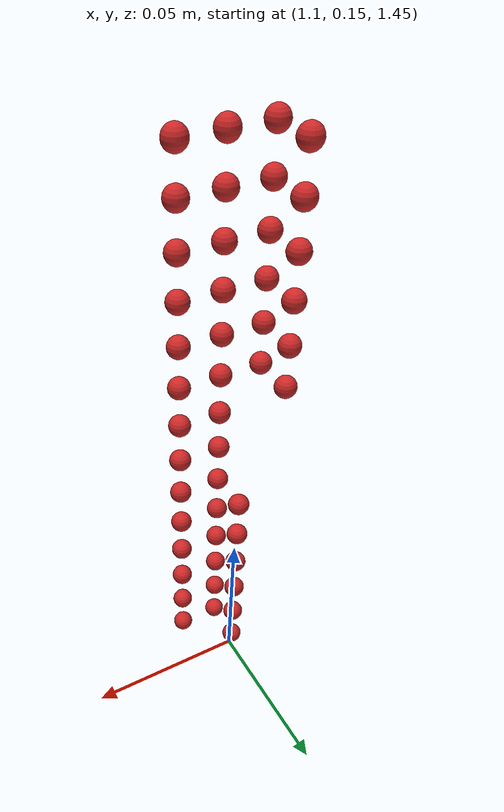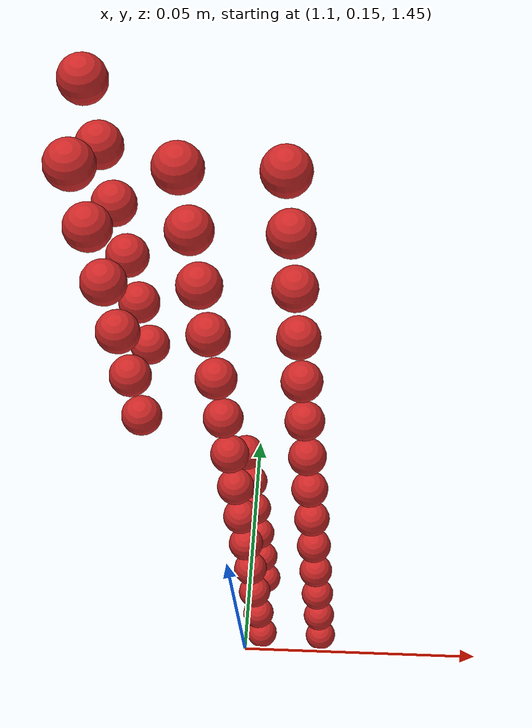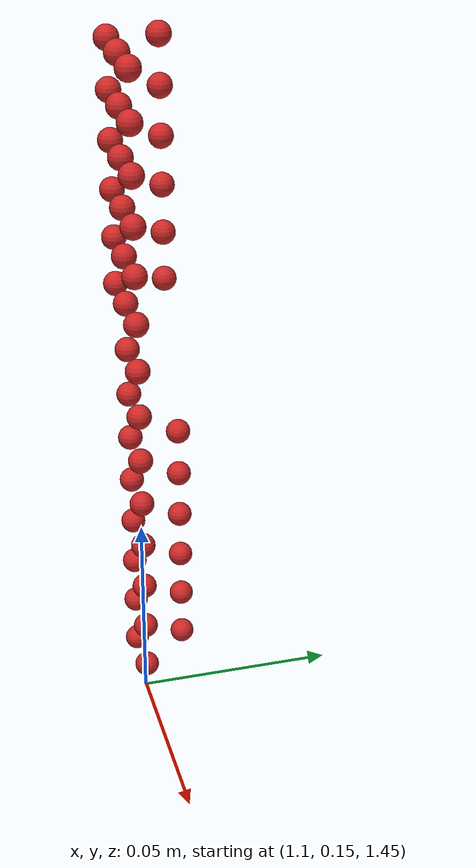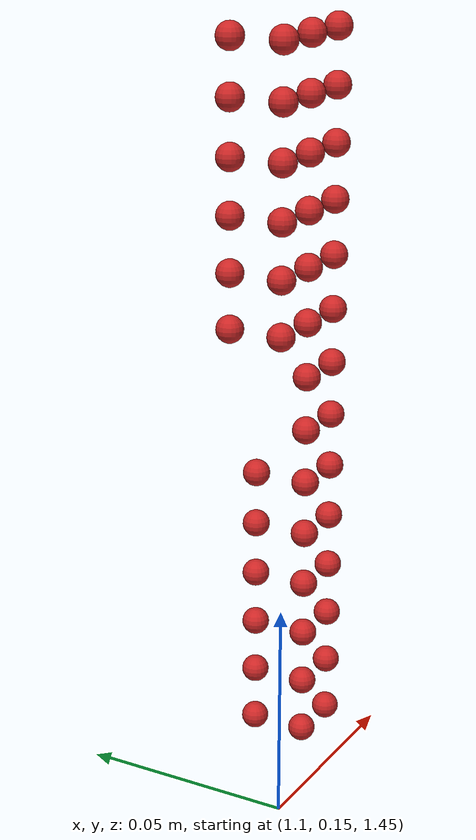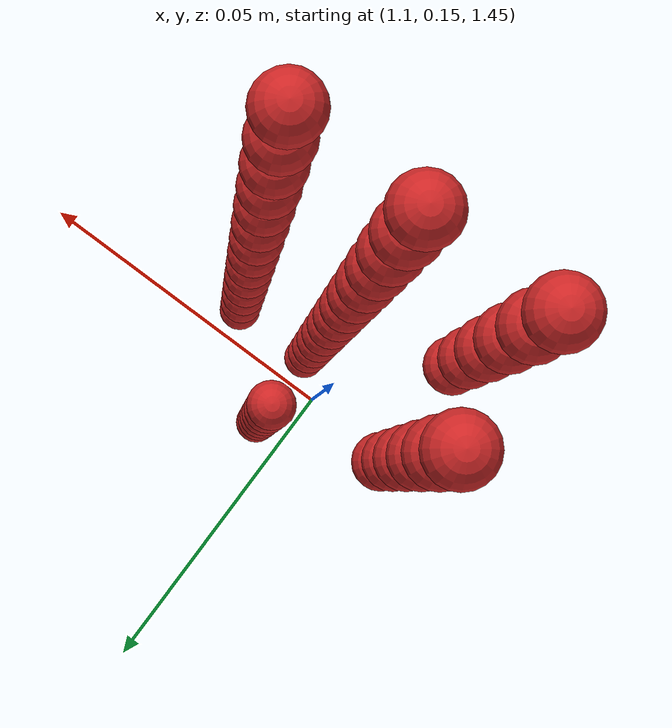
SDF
<sdf version="1.4">
 <world name="default">
  <model name="ground_plane">
   <static>1</static>
   <link name="link">
    <collision name="collision">
     <geometry><plane><normal>0 0 1</normal><size>100 100</size></plane></geometry>
     <surface><friction><ode><mu>100</mu><mu2>50</mu2></ode></friction></surface>
    </collision>
    <visual name="visual">
     <cast_shadows>0</cast_shadows>
     <geometry><plane><normal>0 0 1</normal><size>100 100</size></plane></geometry>
     <material>
      <script><uri>file://media/materials/scripts/gazebo.material</uri><name>Gazebo/Grey</name></script>
     </material>
    </visual>
    <velocity_decay><linear>0</linear><angular>0</angular></velocity_decay>
   </link>
  </model>
  <model name="sphere2">
   <pose>0.558545 0.079517 0.734885 0 0 0</pose>
   <link name="link">
    <pose>0.546545 0.067517 0.734885 0 0 0</pose>
    <inertial>
     <mass>0.001</mass>
     <inertia>
      <ixx>0.004</ixx>
      <ixy>0.000000</ixy>
      <ixz>0.000000</ixz>
      <iyy>0.004</iyy>
      <iyz>0.000000</iyz>
      <izz>0.004</izz>
     </inertia>
    </inertial>
    <collision name="collision">
     <surface>
      <contact><ode><kp>10000000000.000000</kp><kd>1</kd></ode></contact>
      <friction><ode><mu>0.01</mu><mu2>0.01</mu2></ode></friction>
     </surface>
     <geometry><sphere><radius>0.003</radius></sphere></geometry>
    </collision>
    <visual name="visual">
     <geometry><sphere><radius>0.003</radius></sphere></geometry>
     <material>
      <script><uri>file://media/materials/scripts/gazebo.material</uri><name>Gazebo/Red</name></script>
     </material>
    </visual>
   </link>
  </model>
  <model name="sphere3">
   <pose>0.564545 0.079517 0.734885 0 0 0</pose>
   <link name="link">
    <pose>0.552545 0.067517 0.734885 0 0 0</pose>
    <inertial>
     <mass>0.001</mass>
     <inertia>
      <ixx>0.004</ixx>
      <ixy>0.000000</ixy>
      <ixz>0.000000</ixz>
      <iyy>0.004</iyy>
      <iyz>0.000000</iyz>
      <izz>0.004</izz>
     </inertia>
    </inertial>
    <collision name="collision">
     <surface>
      <contact><ode><kp>10000000000.000000</kp><kd>1</kd></ode></contact>
      <friction><ode><mu>0.01</mu><mu2>0.01</mu2></ode></friction>
     </surface>
     <geometry><sphere><radius>0.003</radius></sphere></geometry>
    </collision>
    <visual name="visual">
     <geometry><sphere><radius>0.003</radius></sphere></geometry>
     <material>
      <script><uri>file://media/materials/scripts/gazebo.material</uri><name>Gazebo/Red</name></script>
     </material>
    </visual>
   </link>
  </model>
  <model name="sphere6">
   <pose>0.558545 0.085517 0.734885 0 0 0</pose>
   <link name="link">
    <pose>0.546545 0.073517 0.734885 0 0 0</pose>
    <inertial>
     <mass>0.001</mass>
     <inertia>
      <ixx>0.004</ixx>
      <ixy>0.000000</ixy>
      <ixz>0.000000</ixz>
      <iyy>0.004</iyy>
      <iyz>0.000000</iyz>
      <izz>0.004</izz>
     </inertia>
    </inertial>
    <collision name="collision">
     <surface>
      <contact><ode><kp>10000000000.000000</kp><kd>1</kd></ode></contact>
      <friction><ode><mu>0.01</mu><mu2>0.01</mu2></ode></friction>
     </surface>
     <geometry><sphere><radius>0.003</radius></sphere></geometry>
    </collision>
    <visual name="visual">
     <geometry><sphere><radius>0.003</radius></sphere></geometry>
     <material>
      <script><uri>file://media/materials/scripts/gazebo.material</uri><name>Gazebo/Red</name></script>
     </material>
    </visual>
   </link>
  </model>
  <model name="sphere18">
   <pose>0.558545 0.079517 0.740885 0 0 0</pose>
   <link name="link">
    <pose>0.546545 0.067517 0.740885 0 0 0</pose>
    <inertial>
     <mass>0.001</mass>
     <inertia>
      <ixx>0.004</ixx>
      <ixy>0.000000</ixy>
      <ixz>0.000000</ixz>
      <iyy>0.004</iyy>
      <iyz>0.000000</iyz>
      <izz>0.004</izz>
     </inertia>
    </inertial>
    <collision name="collision">
     <surface>
      <contact><ode><kp>10000000000.000000</kp><kd>1</kd></ode></contact>
      <friction><ode><mu>0.01</mu><mu2>0.01</mu2></ode></friction>
     </surface>
     <geometry><sphere><radius>0.003</radius></sphere></geometry>
    </collision>
    <visual name="visual">
     <geometry><sphere><radius>0.003</radius></sphere></geometry>
     <material>
      <script><uri>file://media/materials/scripts/gazebo.material</uri><name>Gazebo/Red</name></script>
     </material>
    </visual>
   </link>
  </model>
  <model name="sphere19">
   <pose>0.564545 0.079517 0.740885 0 0 0</pose>
   <link name="link">
    <pose>0.552545 0.067517 0.740885 0 0 0</pose>
    <inertial>
     <mass>0.001</mass>
     <inertia>
      <ixx>0.004</ixx>
      <ixy>0.000000</ixy>
      <ixz>0.000000</ixz>
      <iyy>0.004</iyy>
      <iyz>0.000000</iyz>
      <izz>0.004</izz>
     </inertia>
    </inertial>
    <collision name="collision">
     <surface>
      <contact><ode><kp>10000000000.000000</kp><kd>1</kd></ode></contact>
      <friction><ode><mu>0.01</mu><mu2>0.01</mu2></ode></friction>
     </surface>
     <geometry><sphere><radius>0.003</radius></sphere></geometry>
    </collision>
    <visual name="visual">
     <geometry><sphere><radius>0.003</radius></sphere></geometry>
     <material>
      <script><uri>file://media/materials/scripts/gazebo.material</uri><name>Gazebo/Red</name></script>
     </material>
    </visual>
   </link>
  </model>
  <model name="sphere22">
   <pose>0.558545 0.085517 0.740885 0 0 0</pose>
   <link name="link">
    <pose>0.546545 0.073517 0.740885 0 0 0</pose>
    <inertial>
     <mass>0.001</mass>
     <inertia>
      <ixx>0.004</ixx>
      <ixy>0.000000</ixy>
      <ixz>0.000000</ixz>
      <iyy>0.004</iyy>
      <iyz>0.000000</iyz>
      <izz>0.004</izz>
     </inertia>
    </inertial>
    <collision name="collision">
     <surface>
      <contact><ode><kp>10000000000.000000</kp><kd>1</kd></ode></contact>
      <friction><ode><mu>0.01</mu><mu2>0.01</mu2></ode></friction>
     </surface>
     <geometry><sphere><radius>0.003</radius></sphere></geometry>
    </collision>
    <visual name="visual">
     <geometry><sphere><radius>0.003</radius></sphere></geometry>
     <material>
      <script><uri>file://media/materials/scripts/gazebo.material</uri><name>Gazebo/Red</name></script>
     </material>
    </visual>
   </link>
  </model>
  <model name="sphere34">
   <pose>0.558545 0.079517 0.746885 0 0 0</pose>
   <link name="link">
    <pose>0.546545 0.067517 0.746885 0 0 0</pose>
    <inertial>
     <mass>0.001</mass>
     <inertia>
      <ixx>0.004</ixx>
      <ixy>0.000000</ixy>
      <ixz>0.000000</ixz>
      <iyy>0.004</iyy>
      <iyz>0.000000</iyz>
      <izz>0.004</izz>
     </inertia>
    </inertial>
    <collision name="collision">
     <surface>
      <contact><ode><kp>10000000000.000000</kp><kd>1</kd></ode></contact>
      <friction><ode><mu>0.01</mu><mu2>0.01</mu2></ode></friction>
     </surface>
     <geometry><sphere><radius>0.003</radius></sphere></geometry>
    </collision>
    <visual name="visual">
     <geometry><sphere><radius>0.003</radius></sphere></geometry>
     <material>
      <script><uri>file://media/materials/scripts/gazebo.material</uri><name>Gazebo/Red</name></script>
     </material>
    </visual>
   </link>
  </model>
  <model name="sphere35">
   <pose>0.564545 0.079517 0.746885 0 0 0</pose>
   <link name="link">
    <pose>0.552545 0.067517 0.746885 0 0 0</pose>
    <inertial>
     <mass>0.001</mass>
     <inertia>
      <ixx>0.004</ixx>
      <ixy>0.000000</ixy>
      <ixz>0.000000</ixz>
      <iyy>0.004</iyy>
      <iyz>0.000000</iyz>
      <izz>0.004</izz>
     </inertia>
    </inertial>
    <collision name="collision">
     <surface>
      <contact><ode><kp>10000000000.000000</kp><kd>1</kd></ode></contact>
      <friction><ode><mu>0.01</mu><mu2>0.01</mu2></ode></friction>
     </surface>
     <geometry><sphere><radius>0.003</radius></sphere></geometry>
    </collision>
    <visual name="visual">
     <geometry><sphere><radius>0.003</radius></sphere></geometry>
     <material>
      <script><uri>file://media/materials/scripts/gazebo.material</uri><name>Gazebo/Red</name></script>
     </material>
    </visual>
   </link>
  </model>
  <model name="sphere38">
   <pose>0.558545 0.085517 0.746885 0 0 0</pose>
   <link name="link">
    <pose>0.546545 0.073517 0.746885 0 0 0</pose>
    <inertial>
     <mass>0.001</mass>
     <inertia>
      <ixx>0.004</ixx>
      <ixy>0.000000</ixy>
      <ixz>0.000000</ixz>
      <iyy>0.004</iyy>
      <iyz>0.000000</iyz>
      <izz>0.004</izz>
     </inertia>
    </inertial>
    <collision name="collision">
     <surface>
      <contact><ode><kp>10000000000.000000</kp><kd>1</kd></ode></contact>
      <friction><ode><mu>0.01</mu><mu2>0.01</mu2></ode></friction>
     </surface>
     <geometry><sphere><radius>0.003</radius></sphere></geometry>
    </collision>
    <visual name="visual">
     <geometry><sphere><radius>0.003</radius></sphere></geometry>
     <material>
      <script><uri>file://media/materials/scripts/gazebo.material</uri><name>Gazebo/Red</name></script>
     </material>
    </visual>
   </link>
  </model>
  <model name="sphere50">
   <pose>0.558545 0.079517 0.752885 0 0 0</pose>
   <link name="link">
    <pose>0.546545 0.067517 0.752885 0 0 0</pose>
    <inertial>
     <mass>0.001</mass>
     <inertia>
      <ixx>0.004</ixx>
      <ixy>0.000000</ixy>
      <ixz>0.000000</ixz>
      <iyy>0.004</iyy>
      <iyz>0.000000</iyz>
      <izz>0.004</izz>
     </inertia>
    </inertial>
    <collision name="collision">
     <surface>
      <contact><ode><kp>10000000000.000000</kp><kd>1</kd></ode></contact>
      <friction><ode><mu>0.01</mu><mu2>0.01</mu2></ode></friction>
     </surface>
     <geometry><sphere><radius>0.003</radius></sphere></geometry>
    </collision>
    <visual name="visual">
     <geometry><sphere><radius>0.003</radius></sphere></geometry>
     <material>
      <script><uri>file://media/materials/scripts/gazebo.material</uri><name>Gazebo/Red</name></script>
     </material>
    </visual>
   </link>
  </model>
  <model name="sphere51">
   <pose>0.564545 0.079517 0.752885 0 0 0</pose>
   <link name="link">
    <pose>0.552545 0.067517 0.752885 0 0 0</pose>
    <inertial>
     <mass>0.001</mass>
     <inertia>
      <ixx>0.004</ixx>
      <ixy>0.000000</ixy>
      <ixz>0.000000</ixz>
      <iyy>0.004</iyy>
      <iyz>0.000000</iyz>
      <izz>0.004</izz>
     </inertia>
    </inertial>
    <collision name="collision">
     <surface>
      <contact><ode><kp>10000000000.000000</kp><kd>1</kd></ode></contact>
      <friction><ode><mu>0.01</mu><mu2>0.01</mu2></ode></friction>
     </surface>
     <geometry><sphere><radius>0.003</radius></sphere></geometry>
    </collision>
    <visual name="visual">
     <geometry><sphere><radius>0.003</radius></sphere></geometry>
     <material>
      <script><uri>file://media/materials/scripts/gazebo.material</uri><name>Gazebo/Red</name></script>
     </material>
    </visual>
   </link>
  </model>
  <model name="sphere54">
   <pose>0.558545 0.085517 0.752885 0 0 0</pose>
   <link name="link">
    <pose>0.546545 0.073517 0.752885 0 0 0</pose>
    <inertial>
     <mass>0.001</mass>
     <inertia>
      <ixx>0.004</ixx>
      <ixy>0.000000</ixy>
      <ixz>0.000000</ixz>
      <iyy>0.004</iyy>
      <iyz>0.000000</iyz>
      <izz>0.004</izz>
     </inertia>
    </inertial>
    <collision name="collision">
     <surface>
      <contact><ode><kp>10000000000.000000</kp><kd>1</kd></ode></contact>
      <friction><ode><mu>0.01</mu><mu2>0.01</mu2></ode></friction>
     </surface>
     <geometry><sphere><radius>0.003</radius></sphere></geometry>
    </collision>
    <visual name="visual">
     <geometry><sphere><radius>0.003</radius></sphere></geometry>
     <material>
      <script><uri>file://media/materials/scripts/gazebo.material</uri><name>Gazebo/Red</name></script>
     </material>
    </visual>
   </link>
  </model>
  <model name="sphere66">
   <pose>0.558545 0.079517 0.758885 0 0 0</pose>
   <link name="link">
    <pose>0.546545 0.067517 0.758885 0 0 0</pose>
    <inertial>
     <mass>0.001</mass>
     <inertia>
      <ixx>0.004</ixx>
      <ixy>0.000000</ixy>
      <ixz>0.000000</ixz>
      <iyy>0.004</iyy>
      <iyz>0.000000</iyz>
      <izz>0.004</izz>
     </inertia>
    </inertial>
    <collision name="collision">
     <surface>
      <contact><ode><kp>10000000000.000000</kp><kd>1</kd></ode></contact>
      <friction><ode><mu>0.01</mu><mu2>0.01</mu2></ode></friction>
     </surface>
     <geometry><sphere><radius>0.003</radius></sphere></geometry>
    </collision>
    <visual name="visual">
     <geometry><sphere><radius>0.003</radius></sphere></geometry>
     <material>
      <script><uri>file://media/materials/scripts/gazebo.material</uri><name>Gazebo/Red</name></script>
     </material>
    </visual>
   </link>
  </model>
  <model name="sphere67">
   <pose>0.564545 0.079517 0.758885 0 0 0</pose>
   <link name="link">
    <pose>0.552545 0.067517 0.758885 0 0 0</pose>
    <inertial>
     <mass>0.001</mass>
     <inertia>
      <ixx>0.004</ixx>
      <ixy>0.000000</ixy>
      <ixz>0.000000</ixz>
      <iyy>0.004</iyy>
      <iyz>0.000000</iyz>
      <izz>0.004</izz>
     </inertia>
    </inertial>
    <collision name="collision">
     <surface>
      <contact><ode><kp>10000000000.000000</kp><kd>1</kd></ode></contact>
      <friction><ode><mu>0.01</mu><mu2>0.01</mu2></ode></friction>
     </surface>
     <geometry><sphere><radius>0.003</radius></sphere></geometry>
    </collision>
    <visual name="visual">
     <geometry><sphere><radius>0.003</radius></sphere></geometry>
     <material>
      <script><uri>file://media/materials/scripts/gazebo.material</uri><name>Gazebo/Red</name></script>
     </material>
    </visual>
   </link>
  </model>
  <model name="sphere70">
   <pose>0.558545 0.085517 0.758885 0 0 0</pose>
   <link name="link">
    <pose>0.546545 0.073517 0.758885 0 0 0</pose>
    <inertial>
     <mass>0.001</mass>
     <inertia>
      <ixx>0.004</ixx>
      <ixy>0.000000</ixy>
      <ixz>0.000000</ixz>
      <iyy>0.004</iyy>
      <iyz>0.000000</iyz>
      <izz>0.004</izz>
     </inertia>
    </inertial>
    <collision name="collision">
     <surface>
      <contact><ode><kp>10000000000.000000</kp><kd>1</kd></ode></contact>
      <friction><ode><mu>0.01</mu><mu2>0.01</mu2></ode></friction>
     </surface>
     <geometry><sphere><radius>0.003</radius></sphere></geometry>
    </collision>
    <visual name="visual">
     <geometry><sphere><radius>0.003</radius></sphere></geometry>
     <material>
      <script><uri>file://media/materials/scripts/gazebo.material</uri><name>Gazebo/Red</name></script>
     </material>
    </visual>
   </link>
  </model>
  <model name="sphere82">
   <pose>0.558545 0.079517 0.764885 0 0 0</pose>
   <link name="link">
    <pose>0.546545 0.067517 0.764885 0 0 0</pose>
    <inertial>
     <mass>0.001</mass>
     <inertia>
      <ixx>0.004</ixx>
      <ixy>0.000000</ixy>
      <ixz>0.000000</ixz>
      <iyy>0.004</iyy>
      <iyz>0.000000</iyz>
      <izz>0.004</izz>
     </inertia>
    </inertial>
    <collision name="collision">
     <surface>
      <contact><ode><kp>10000000000.000000</kp><kd>1</kd></ode></contact>
      <friction><ode><mu>0.01</mu><mu2>0.01</mu2></ode></friction>
     </surface>
     <geometry><sphere><radius>0.003</radius></sphere></geometry>
    </collision>
    <visual name="visual">
     <geometry><sphere><radius>0.003</radius></sphere></geometry>
     <material>
      <script><uri>file://media/materials/scripts/gazebo.material</uri><name>Gazebo/Red</name></script>
     </material>
    </visual>
   </link>
  </model>
  <model name="sphere83">
   <pose>0.564545 0.079517 0.764885 0 0 0</pose>
   <link name="link">
    <pose>0.552545 0.067517 0.764885 0 0 0</pose>
    <inertial>
     <mass>0.001</mass>
     <inertia>
      <ixx>0.004</ixx>
      <ixy>0.000000</ixy>
      <ixz>0.000000</ixz>
      <iyy>0.004</iyy>
      <iyz>0.000000</iyz>
      <izz>0.004</izz>
     </inertia>
    </inertial>
    <collision name="collision">
     <surface>
      <contact><ode><kp>10000000000.000000</kp><kd>1</kd></ode></contact>
      <friction><ode><mu>0.01</mu><mu2>0.01</mu2></ode></friction>
     </surface>
     <geometry><sphere><radius>0.003</radius></sphere></geometry>
    </collision>
    <visual name="visual">
     <geometry><sphere><radius>0.003</radius></sphere></geometry>
     <material>
      <script><uri>file://media/materials/scripts/gazebo.material</uri><name>Gazebo/Red</name></script>
     </material>
    </visual>
   </link>
  </model>
  <model name="sphere86">
   <pose>0.558545 0.085517 0.764885 0 0 0</pose>
   <link name="link">
    <pose>0.546545 0.073517 0.764885 0 0 0</pose>
    <inertial>
     <mass>0.001</mass>
     <inertia>
      <ixx>0.004</ixx>
      <ixy>0.000000</ixy>
      <ixz>0.000000</ixz>
      <iyy>0.004</iyy>
      <iyz>0.000000</iyz>
      <izz>0.004</izz>
     </inertia>
    </inertial>
    <collision name="collision">
     <surface>
      <contact><ode><kp>10000000000.000000</kp><kd>1</kd></ode></contact>
      <friction><ode><mu>0.01</mu><mu2>0.01</mu2></ode></friction>
     </surface>
     <geometry><sphere><radius>0.003</radius></sphere></geometry>
    </collision>
    <visual name="visual">
     <geometry><sphere><radius>0.003</radius></sphere></geometry>
     <material>
      <script><uri>file://media/materials/scripts/gazebo.material</uri><name>Gazebo/Red</name></script>
     </material>
    </visual>
   </link>
  </model>
  <model name="sphere98">
   <pose>0.558545 0.079517 0.770885 0 0 0</pose>
   <link name="link">
    <pose>0.546545 0.067517 0.770885 0 0 0</pose>
    <inertial>
     <mass>0.001</mass>
     <inertia>
      <ixx>0.004</ixx>
      <ixy>0.000000</ixy>
      <ixz>0.000000</ixz>
      <iyy>0.004</iyy>
      <iyz>0.000000</iyz>
      <izz>0.004</izz>
     </inertia>
    </inertial>
    <collision name="collision">
     <surface>
      <contact><ode><kp>10000000000.000000</kp><kd>1</kd></ode></contact>
      <friction><ode><mu>0.01</mu><mu2>0.01</mu2></ode></friction>
     </surface>
     <geometry><sphere><radius>0.003</radius></sphere></geometry>
    </collision>
    <visual name="visual">
     <geometry><sphere><radius>0.003</radius></sphere></geometry>
     <material>
      <script><uri>file://media/materials/scripts/gazebo.material</uri><name>Gazebo/Red</name></script>
     </material>
    </visual>
   </link>
  </model>
  <model name="sphere99">
   <pose>0.564545 0.079517 0.770885 0 0 0</pose>
   <link name="link">
    <pose>0.552545 0.067517 0.770885 0 0 0</pose>
    <inertial>
     <mass>0.001</mass>
     <inertia>
      <ixx>0.004</ixx>
      <ixy>0.000000</ixy>
      <ixz>0.000000</ixz>
      <iyy>0.004</iyy>
      <iyz>0.000000</iyz>
      <izz>0.004</izz>
     </inertia>
    </inertial>
    <collision name="collision">
     <surface>
      <contact><ode><kp>10000000000.000000</kp><kd>1</kd></ode></contact>
      <friction><ode><mu>0.01</mu><mu2>0.01</mu2></ode></friction>
     </surface>
     <geometry><sphere><radius>0.003</radius></sphere></geometry>
    </collision>
    <visual name="visual">
     <geometry><sphere><radius>0.003</radius></sphere></geometry>
     <material>
      <script><uri>file://media/materials/scripts/gazebo.material</uri><name>Gazebo/Red</name></script>
     </material>
    </visual>
   </link>
  </model>
  <model name="sphere114">
   <pose>0.558545 0.079517 0.776885 0 0 0</pose>
   <link name="link">
    <pose>0.546545 0.067517 0.776885 0 0 0</pose>
    <inertial>
     <mass>0.001</mass>
     <inertia>
      <ixx>0.004</ixx>
      <ixy>0.000000</ixy>
      <ixz>0.000000</ixz>
      <iyy>0.004</iyy>
      <iyz>0.000000</iyz>
      <izz>0.004</izz>
     </inertia>
    </inertial>
    <collision name="collision">
     <surface>
      <contact><ode><kp>10000000000.000000</kp><kd>1</kd></ode></contact>
      <friction><ode><mu>0.01</mu><mu2>0.01</mu2></ode></friction>
     </surface>
     <geometry><sphere><radius>0.003</radius></sphere></geometry>
    </collision>
    <visual name="visual">
     <geometry><sphere><radius>0.003</radius></sphere></geometry>
     <material>
      <script><uri>file://media/materials/scripts/gazebo.material</uri><name>Gazebo/Red</name></script>
     </material>
    </visual>
   </link>
  </model>
  <model name="sphere115">
   <pose>0.564545 0.079517 0.776885 0 0 0</pose>
   <link name="link">
    <pose>0.552545 0.067517 0.776885 0 0 0</pose>
    <inertial>
     <mass>0.001</mass>
     <inertia>
      <ixx>0.004</ixx>
      <ixy>0.000000</ixy>
      <ixz>0.000000</ixz>
      <iyy>0.004</iyy>
      <iyz>0.000000</iyz>
      <izz>0.004</izz>
     </inertia>
    </inertial>
    <collision name="collision">
     <surface>
      <contact><ode><kp>10000000000.000000</kp><kd>1</kd></ode></contact>
      <friction><ode><mu>0.01</mu><mu2>0.01</mu2></ode></friction>
     </surface>
     <geometry><sphere><radius>0.003</radius></sphere></geometry>
    </collision>
    <visual name="visual">
     <geometry><sphere><radius>0.003</radius></sphere></geometry>
     <material>
      <script><uri>file://media/materials/scripts/gazebo.material</uri><name>Gazebo/Red</name></script>
     </material>
    </visual>
   </link>
  </model>
  <model name="sphere129">
   <pose>0.552545 0.079517 0.782885 0 0 0</pose>
   <link name="link">
    <pose>0.540545 0.067517 0.782885 0 0 0</pose>
    <inertial>
     <mass>0.001</mass>
     <inertia>
      <ixx>0.004</ixx>
      <ixy>0.000000</ixy>
      <ixz>0.000000</ixz>
      <iyy>0.004</iyy>
      <iyz>0.000000</iyz>
      <izz>0.004</izz>
     </inertia>
    </inertial>
    <collision name="collision">
     <surface>
      <contact><ode><kp>10000000000.000000</kp><kd>1</kd></ode></contact>
      <friction><ode><mu>0.01</mu><mu2>0.01</mu2></ode></friction>
     </surface>
     <geometry><sphere><radius>0.003</radius></sphere></geometry>
    </collision>
    <visual name="visual">
     <geometry><sphere><radius>0.003</radius></sphere></geometry>
     <material>
      <script><uri>file://media/materials/scripts/gazebo.material</uri><name>Gazebo/Red</name></script>
     </material>
    </visual>
   </link>
  </model>
  <model name="sphere130">
   <pose>0.558545 0.079517 0.782885 0 0 0</pose>
   <link name="link">
    <pose>0.546545 0.067517 0.782885 0 0 0</pose>
    <inertial>
     <mass>0.001</mass>
     <inertia>
      <ixx>0.004</ixx>
      <ixy>0.000000</ixy>
      <ixz>0.000000</ixz>
      <iyy>0.004</iyy>
      <iyz>0.000000</iyz>
      <izz>0.004</izz>
     </inertia>
    </inertial>
    <collision name="collision">
     <surface>
      <contact><ode><kp>10000000000.000000</kp><kd>1</kd></ode></contact>
      <friction><ode><mu>0.01</mu><mu2>0.01</mu2></ode></friction>
     </surface>
     <geometry><sphere><radius>0.003</radius></sphere></geometry>
    </collision>
    <visual name="visual">
     <geometry><sphere><radius>0.003</radius></sphere></geometry>
     <material>
      <script><uri>file://media/materials/scripts/gazebo.material</uri><name>Gazebo/Red</name></script>
     </material>
    </visual>
   </link>
  </model>
  <model name="sphere131">
   <pose>0.564545 0.079517 0.782885 0 0 0</pose>
   <link name="link">
    <pose>0.552545 0.067517 0.782885 0 0 0</pose>
    <inertial>
     <mass>0.001</mass>
     <inertia>
      <ixx>0.004</ixx>
      <ixy>0.000000</ixy>
      <ixz>0.000000</ixz>
      <iyy>0.004</iyy>
      <iyz>0.000000</iyz>
      <izz>0.004</izz>
     </inertia>
    </inertial>
    <collision name="collision">
     <surface>
      <contact><ode><kp>10000000000.000000</kp><kd>1</kd></ode></contact>
      <friction><ode><mu>0.01</mu><mu2>0.01</mu2></ode></friction>
     </surface>
     <geometry><sphere><radius>0.003</radius></sphere></geometry>
    </collision>
    <visual name="visual">
     <geometry><sphere><radius>0.003</radius></sphere></geometry>
     <material>
      <script><uri>file://media/materials/scripts/gazebo.material</uri><name>Gazebo/Red</name></script>
     </material>
    </visual>
   </link>
  </model>
  <model name="sphere133">
   <pose>0.552545 0.085517 0.782885 0 0 0</pose>
   <link name="link">
    <pose>0.540545 0.073517 0.782885 0 0 0</pose>
    <inertial>
     <mass>0.001</mass>
     <inertia>
      <ixx>0.004</ixx>
      <ixy>0.000000</ixy>
      <ixz>0.000000</ixz>
      <iyy>0.004</iyy>
      <iyz>0.000000</iyz>
      <izz>0.004</izz>
     </inertia>
    </inertial>
    <collision name="collision">
     <surface>
      <contact><ode><kp>10000000000.000000</kp><kd>1</kd></ode></contact>
      <friction><ode><mu>0.01</mu><mu2>0.01</mu2></ode></friction>
     </surface>
     <geometry><sphere><radius>0.003</radius></sphere></geometry>
    </collision>
    <visual name="visual">
     <geometry><sphere><radius>0.003</radius></sphere></geometry>
     <material>
      <script><uri>file://media/materials/scripts/gazebo.material</uri><name>Gazebo/Red</name></script>
     </material>
    </visual>
   </link>
  </model>
  <model name="sphere145">
   <pose>0.552545 0.079517 0.788885 0 0 0</pose>
   <link name="link">
    <pose>0.540545 0.067517 0.788885 0 0 0</pose>
    <inertial>
     <mass>0.001</mass>
     <inertia>
      <ixx>0.004</ixx>
      <ixy>0.000000</ixy>
      <ixz>0.000000</ixz>
      <iyy>0.004</iyy>
      <iyz>0.000000</iyz>
      <izz>0.004</izz>
     </inertia>
    </inertial>
    <collision name="collision">
     <surface>
      <contact><ode><kp>10000000000.000000</kp><kd>1</kd></ode></contact>
      <friction><ode><mu>0.01</mu><mu2>0.01</mu2></ode></friction>
     </surface>
     <geometry><sphere><radius>0.003</radius></sphere></geometry>
    </collision>
    <visual name="visual">
     <geometry><sphere><radius>0.003</radius></sphere></geometry>
     <material>
      <script><uri>file://media/materials/scripts/gazebo.material</uri><name>Gazebo/Red</name></script>
     </material>
    </visual>
   </link>
  </model>
  <model name="sphere146">
   <pose>0.558545 0.079517 0.788885 0 0 0</pose>
   <link name="link">
    <pose>0.546545 0.067517 0.788885 0 0 0</pose>
    <inertial>
     <mass>0.001</mass>
     <inertia>
      <ixx>0.004</ixx>
      <ixy>0.000000</ixy>
      <ixz>0.000000</ixz>
      <iyy>0.004</iyy>
      <iyz>0.000000</iyz>
      <izz>0.004</izz>
     </inertia>
    </inertial>
    <collision name="collision">
     <surface>
      <contact><ode><kp>10000000000.000000</kp><kd>1</kd></ode></contact>
      <friction><ode><mu>0.01</mu><mu2>0.01</mu2></ode></friction>
     </surface>
     <geometry><sphere><radius>0.003</radius></sphere></geometry>
    </collision>
    <visual name="visual">
     <geometry><sphere><radius>0.003</radius></sphere></geometry>
     <material>
      <script><uri>file://media/materials/scripts/gazebo.material</uri><name>Gazebo/Red</name></script>
     </material>
    </visual>
   </link>
  </model>
  <model name="sphere147">
   <pose>0.564545 0.079517 0.788885 0 0 0</pose>
   <link name="link">
    <pose>0.552545 0.067517 0.788885 0 0 0</pose>
    <inertial>
     <mass>0.001</mass>
     <inertia>
      <ixx>0.004</ixx>
      <ixy>0.000000</ixy>
      <ixz>0.000000</ixz>
      <iyy>0.004</iyy>
      <iyz>0.000000</iyz>
      <izz>0.004</izz>
     </inertia>
    </inertial>
    <collision name="collision">
     <surface>
      <contact><ode><kp>10000000000.000000</kp><kd>1</kd></ode></contact>
      <friction><ode><mu>0.01</mu><mu2>0.01</mu2></ode></friction>
     </surface>
     <geometry><sphere><radius>0.003</radius></sphere></geometry>
    </collision>
    <visual name="visual">
     <geometry><sphere><radius>0.003</radius></sphere></geometry>
     <material>
      <script><uri>file://media/materials/scripts/gazebo.material</uri><name>Gazebo/Red</name></script>
     </material>
    </visual>
   </link>
  </model>
  <model name="sphere149">
   <pose>0.552545 0.085517 0.788885 0 0 0</pose>
   <link name="link">
    <pose>0.540545 0.073517 0.788885 0 0 0</pose>
    <inertial>
     <mass>0.001</mass>
     <inertia>
      <ixx>0.004</ixx>
      <ixy>0.000000</ixy>
      <ixz>0.000000</ixz>
      <iyy>0.004</iyy>
      <iyz>0.000000</iyz>
      <izz>0.004</izz>
     </inertia>
    </inertial>
    <collision name="collision">
     <surface>
      <contact><ode><kp>10000000000.000000</kp><kd>1</kd></ode></contact>
      <friction><ode><mu>0.01</mu><mu2>0.01</mu2></ode></friction>
     </surface>
     <geometry><sphere><radius>0.003</radius></sphere></geometry>
    </collision>
    <visual name="visual">
     <geometry><sphere><radius>0.003</radius></sphere></geometry>
     <material>
      <script><uri>file://media/materials/scripts/gazebo.material</uri><name>Gazebo/Red</name></script>
     </material>
    </visual>
   </link>
  </model>
  <model name="sphere161">
   <pose>0.552545 0.079517 0.794885 0 0 0</pose>
   <link name="link">
    <pose>0.540545 0.067517 0.794885 0 0 0</pose>
    <inertial>
     <mass>0.001</mass>
     <inertia>
      <ixx>0.004</ixx>
      <ixy>0.000000</ixy>
      <ixz>0.000000</ixz>
      <iyy>0.004</iyy>
      <iyz>0.000000</iyz>
      <izz>0.004</izz>
     </inertia>
    </inertial>
    <collision name="collision">
     <surface>
      <contact><ode><kp>10000000000.000000</kp><kd>1</kd></ode></contact>
      <friction><ode><mu>0.01</mu><mu2>0.01</mu2></ode></friction>
     </surface>
     <geometry><sphere><radius>0.003</radius></sphere></geometry>
    </collision>
    <visual name="visual">
     <geometry><sphere><radius>0.003</radius></sphere></geometry>
     <material>
      <script><uri>file://media/materials/scripts/gazebo.material</uri><name>Gazebo/Red</name></script>
     </material>
    </visual>
   </link>
  </model>
  <model name="sphere162">
   <pose>0.558545 0.079517 0.794885 0 0 0</pose>
   <link name="link">
    <pose>0.546545 0.067517 0.794885 0 0 0</pose>
    <inertial>
     <mass>0.001</mass>
     <inertia>
      <ixx>0.004</ixx>
      <ixy>0.000000</ixy>
      <ixz>0.000000</ixz>
      <iyy>0.004</iyy>
      <iyz>0.000000</iyz>
      <izz>0.004</izz>
     </inertia>
    </inertial>
    <collision name="collision">
     <surface>
      <contact><ode><kp>10000000000.000000</kp><kd>1</kd></ode></contact>
      <friction><ode><mu>0.01</mu><mu2>0.01</mu2></ode></friction>
     </surface>
     <geometry><sphere><radius>0.003</radius></sphere></geometry>
    </collision>
    <visual name="visual">
     <geometry><sphere><radius>0.003</radius></sphere></geometry>
     <material>
      <script><uri>file://media/materials/scripts/gazebo.material</uri><name>Gazebo/Red</name></script>
     </material>
    </visual>
   </link>
  </model>
  <model name="sphere163">
   <pose>0.564545 0.079517 0.794885 0 0 0</pose>
   <link name="link">
    <pose>0.552545 0.067517 0.794885 0 0 0</pose>
    <inertial>
     <mass>0.001</mass>
     <inertia>
      <ixx>0.004</ixx>
      <ixy>0.000000</ixy>
      <ixz>0.000000</ixz>
      <iyy>0.004</iyy>
      <iyz>0.000000</iyz>
      <izz>0.004</izz>
     </inertia>
    </inertial>
    <collision name="collision">
     <surface>
      <contact><ode><kp>10000000000.000000</kp><kd>1</kd></ode></contact>
      <friction><ode><mu>0.01</mu><mu2>0.01</mu2></ode></friction>
     </surface>
     <geometry><sphere><radius>0.003</radius></sphere></geometry>
    </collision>
    <visual name="visual">
     <geometry><sphere><radius>0.003</radius></sphere></geometry>
     <material>
      <script><uri>file://media/materials/scripts/gazebo.material</uri><name>Gazebo/Red</name></script>
     </material>
    </visual>
   </link>
  </model>
  <model name="sphere165">
   <pose>0.552545 0.085517 0.794885 0 0 0</pose>
   <link name="link">
    <pose>0.540545 0.073517 0.794885 0 0 0</pose>
    <inertial>
     <mass>0.001</mass>
     <inertia>
      <ixx>0.004</ixx>
      <ixy>0.000000</ixy>
      <ixz>0.000000</ixz>
      <iyy>0.004</iyy>
      <iyz>0.000000</iyz>
      <izz>0.004</izz>
     </inertia>
    </inertial>
    <collision name="collision">
     <surface>
      <contact><ode><kp>10000000000.000000</kp><kd>1</kd></ode></contact>
      <friction><ode><mu>0.01</mu><mu2>0.01</mu2></ode></friction>
     </surface>
     <geometry><sphere><radius>0.003</radius></sphere></geometry>
    </collision>
    <visual name="visual">
     <geometry><sphere><radius>0.003</radius></sphere></geometry>
     <material>
      <script><uri>file://media/materials/scripts/gazebo.material</uri><name>Gazebo/Red</name></script>
     </material>
    </visual>
   </link>
  </model>
  <model name="sphere177">
   <pose>0.552545 0.079517 0.800885 0 0 0</pose>
   <link name="link">
    <pose>0.540545 0.067517 0.800885 0 0 0</pose>
    <inertial>
     <mass>0.001</mass>
     <inertia>
      <ixx>0.004</ixx>
      <ixy>0.000000</ixy>
      <ixz>0.000000</ixz>
      <iyy>0.004</iyy>
      <iyz>0.000000</iyz>
      <izz>0.004</izz>
     </inertia>
    </inertial>
    <collision name="collision">
     <surface>
      <contact><ode><kp>10000000000.000000</kp><kd>1</kd></ode></contact>
      <friction><ode><mu>0.01</mu><mu2>0.01</mu2></ode></friction>
     </surface>
     <geometry><sphere><radius>0.003</radius></sphere></geometry>
    </collision>
    <visual name="visual">
     <geometry><sphere><radius>0.003</radius></sphere></geometry>
     <material>
      <script><uri>file://media/materials/scripts/gazebo.material</uri><name>Gazebo/Red</name></script>
     </material>
    </visual>
   </link>
  </model>
  <model name="sphere178">
   <pose>0.558545 0.079517 0.800885 0 0 0</pose>
   <link name="link">
    <pose>0.546545 0.067517 0.800885 0 0 0</pose>
    <inertial>
     <mass>0.001</mass>
     <inertia>
      <ixx>0.004</ixx>
      <ixy>0.000000</ixy>
      <ixz>0.000000</ixz>
      <iyy>0.004</iyy>
      <iyz>0.000000</iyz>
      <izz>0.004</izz>
     </inertia>
    </inertial>
    <collision name="collision">
     <surface>
      <contact><ode><kp>10000000000.000000</kp><kd>1</kd></ode></contact>
      <friction><ode><mu>0.01</mu><mu2>0.01</mu2></ode></friction>
     </surface>
     <geometry><sphere><radius>0.003</radius></sphere></geometry>
    </collision>
    <visual name="visual">
     <geometry><sphere><radius>0.003</radius></sphere></geometry>
     <material>
      <script><uri>file://media/materials/scripts/gazebo.material</uri><name>Gazebo/Red</name></script>
     </material>
    </visual>
   </link>
  </model>
  <model name="sphere179">
   <pose>0.564545 0.079517 0.800885 0 0 0</pose>
   <link name="link">
    <pose>0.552545 0.067517 0.800885 0 0 0</pose>
    <inertial>
     <mass>0.001</mass>
     <inertia>
      <ixx>0.004</ixx>
      <ixy>0.000000</ixy>
      <ixz>0.000000</ixz>
      <iyy>0.004</iyy>
      <iyz>0.000000</iyz>
      <izz>0.004</izz>
     </inertia>
    </inertial>
    <collision name="collision">
     <surface>
      <contact><ode><kp>10000000000.000000</kp><kd>1</kd></ode></contact>
      <friction><ode><mu>0.01</mu><mu2>0.01</mu2></ode></friction>
     </surface>
     <geometry><sphere><radius>0.003</radius></sphere></geometry>
    </collision>
    <visual name="visual">
     <geometry><sphere><radius>0.003</radius></sphere></geometry>
     <material>
      <script><uri>file://media/materials/scripts/gazebo.material</uri><name>Gazebo/Red</name></script>
     </material>
    </visual>
   </link>
  </model>
  <model name="sphere181">
   <pose>0.552545 0.085517 0.800885 0 0 0</pose>
   <link name="link">
    <pose>0.540545 0.073517 0.800885 0 0 0</pose>
    <inertial>
     <mass>0.001</mass>
     <inertia>
      <ixx>0.004</ixx>
      <ixy>0.000000</ixy>
      <ixz>0.000000</ixz>
      <iyy>0.004</iyy>
      <iyz>0.000000</iyz>
      <izz>0.004</izz>
     </inertia>
    </inertial>
    <collision name="collision">
     <surface>
      <contact><ode><kp>10000000000.000000</kp><kd>1</kd></ode></contact>
      <friction><ode><mu>0.01</mu><mu2>0.01</mu2></ode></friction>
     </surface>
     <geometry><sphere><radius>0.003</radius></sphere></geometry>
    </collision>
    <visual name="visual">
     <geometry><sphere><radius>0.003</radius></sphere></geometry>
     <material>
      <script><uri>file://media/materials/scripts/gazebo.material</uri><name>Gazebo/Red</name></script>
     </material>
    </visual>
   </link>
  </model>
  <model name="sphere193">
   <pose>0.552545 0.079517 0.806885 0 0 0</pose>
   <link name="link">
    <pose>0.540545 0.067517 0.806885 0 0 0</pose>
    <inertial>
     <mass>0.001</mass>
     <inertia>
      <ixx>0.004</ixx>
      <ixy>0.000000</ixy>
      <ixz>0.000000</ixz>
      <iyy>0.004</iyy>
      <iyz>0.000000</iyz>
      <izz>0.004</izz>
     </inertia>
    </inertial>
    <collision name="collision">
     <surface>
      <contact><ode><kp>10000000000.000000</kp><kd>1</kd></ode></contact>
      <friction><ode><mu>0.01</mu><mu2>0.01</mu2></ode></friction>
     </surface>
     <geometry><sphere><radius>0.003</radius></sphere></geometry>
    </collision>
    <visual name="visual">
     <geometry><sphere><radius>0.003</radius></sphere></geometry>
     <material>
      <script><uri>file://media/materials/scripts/gazebo.material</uri><name>Gazebo/Red</name></script>
     </material>
    </visual>
   </link>
  </model>
  <model name="sphere194">
   <pose>0.558545 0.079517 0.806885 0 0 0</pose>
   <link name="link">
    <pose>0.546545 0.067517 0.806885 0 0 0</pose>
    <inertial>
     <mass>0.001</mass>
     <inertia>
      <ixx>0.004</ixx>
      <ixy>0.000000</ixy>
      <ixz>0.000000</ixz>
      <iyy>0.004</iyy>
      <iyz>0.000000</iyz>
      <izz>0.004</izz>
     </inertia>
    </inertial>
    <collision name="collision">
     <surface>
      <contact><ode><kp>10000000000.000000</kp><kd>1</kd></ode></contact>
      <friction><ode><mu>0.01</mu><mu2>0.01</mu2></ode></friction>
     </surface>
     <geometry><sphere><radius>0.003</radius></sphere></geometry>
    </collision>
    <visual name="visual">
     <geometry><sphere><radius>0.003</radius></sphere></geometry>
     <material>
      <script><uri>file://media/materials/scripts/gazebo.material</uri><name>Gazebo/Red</name></script>
     </material>
    </visual>
   </link>
  </model>
  <model name="sphere195">
   <pose>0.564545 0.079517 0.806885 0 0 0</pose>
   <link name="link">
    <pose>0.552545 0.067517 0.806885 0 0 0</pose>
    <inertial>
     <mass>0.001</mass>
     <inertia>
      <ixx>0.004</ixx>
      <ixy>0.000000</ixy>
      <ixz>0.000000</ixz>
      <iyy>0.004</iyy>
      <iyz>0.000000</iyz>
      <izz>0.004</izz>
     </inertia>
    </inertial>
    <collision name="collision">
     <surface>
      <contact><ode><kp>10000000000.000000</kp><kd>1</kd></ode></contact>
      <friction><ode><mu>0.01</mu><mu2>0.01</mu2></ode></friction>
     </surface>
     <geometry><sphere><radius>0.003</radius></sphere></geometry>
    </collision>
    <visual name="visual">
     <geometry><sphere><radius>0.003</radius></sphere></geometry>
     <material>
      <script><uri>file://media/materials/scripts/gazebo.material</uri><name>Gazebo/Red</name></script>
     </material>
    </visual>
   </link>
  </model>
  <model name="sphere197">
   <pose>0.552545 0.085517 0.806885 0 0 0</pose>
   <link name="link">
    <pose>0.540545 0.073517 0.806885 0 0 0</pose>
    <inertial>
     <mass>0.001</mass>
     <inertia>
      <ixx>0.004</ixx>
      <ixy>0.000000</ixy>
      <ixz>0.000000</ixz>
      <iyy>0.004</iyy>
      <iyz>0.000000</iyz>
      <izz>0.004</izz>
     </inertia>
    </inertial>
    <collision name="collision">
     <surface>
      <contact><ode><kp>10000000000.000000</kp><kd>1</kd></ode></contact>
      <friction><ode><mu>0.01</mu><mu2>0.01</mu2></ode></friction>
     </surface>
     <geometry><sphere><radius>0.003</radius></sphere></geometry>
    </collision>
    <visual name="visual">
     <geometry><sphere><radius>0.003</radius></sphere></geometry>
     <material>
      <script><uri>file://media/materials/scripts/gazebo.material</uri><name>Gazebo/Red</name></script>
     </material>
    </visual>
   </link>
  </model>
  <model name="sphere209">
   <pose>0.552545 0.079517 0.812885 0 0 0</pose>
   <link name="link">
    <pose>0.540545 0.067517 0.812885 0 0 0</pose>
    <inertial>
     <mass>0.001</mass>
     <inertia>
      <ixx>0.004</ixx>
      <ixy>0.000000</ixy>
      <ixz>0.000000</ixz>
      <iyy>0.004</iyy>
      <iyz>0.000000</iyz>
      <izz>0.004</izz>
     </inertia>
    </inertial>
    <collision name="collision">
     <surface>
      <contact><ode><kp>10000000000.000000</kp><kd>1</kd></ode></contact>
      <friction><ode><mu>0.01</mu><mu2>0.01</mu2></ode></friction>
     </surface>
     <geometry><sphere><radius>0.003</radius></sphere></geometry>
    </collision>
    <visual name="visual">
     <geometry><sphere><radius>0.003</radius></sphere></geometry>
     <material>
      <script><uri>file://media/materials/scripts/gazebo.material</uri><name>Gazebo/Red</name></script>
     </material>
    </visual>
   </link>
  </model>
  <model name="sphere210">
   <pose>0.558545 0.079517 0.812885 0 0 0</pose>
   <link name="link">
    <pose>0.546545 0.067517 0.812885 0 0 0</pose>
    <inertial>
     <mass>0.001</mass>
     <inertia>
      <ixx>0.004</ixx>
      <ixy>0.000000</ixy>
      <ixz>0.000000</ixz>
      <iyy>0.004</iyy>
      <iyz>0.000000</iyz>
      <izz>0.004</izz>
     </inertia>
    </inertial>
    <collision name="collision">
     <surface>
      <contact><ode><kp>10000000000.000000</kp><kd>1</kd></ode></contact>
      <friction><ode><mu>0.01</mu><mu2>0.01</mu2></ode></friction>
     </surface>
     <geometry><sphere><radius>0.003</radius></sphere></geometry>
    </collision>
    <visual name="visual">
     <geometry><sphere><radius>0.003</radius></sphere></geometry>
     <material>
      <script><uri>file://media/materials/scripts/gazebo.material</uri><name>Gazebo/Red</name></script>
     </material>
    </visual>
   </link>
  </model>
  <model name="sphere211">
   <pose>0.564545 0.079517 0.812885 0 0 0</pose>
   <link name="link">
    <pose>0.552545 0.067517 0.812885 0 0 0</pose>
    <inertial>
     <mass>0.001</mass>
     <inertia>
      <ixx>0.004</ixx>
      <ixy>0.000000</ixy>
      <ixz>0.000000</ixz>
      <iyy>0.004</iyy>
      <iyz>0.000000</iyz>
      <izz>0.004</izz>
     </inertia>
    </inertial>
    <collision name="collision">
     <surface>
      <contact><ode><kp>10000000000.000000</kp><kd>1</kd></ode></contact>
      <friction><ode><mu>0.01</mu><mu2>0.01</mu2></ode></friction>
     </surface>
     <geometry><sphere><radius>0.003</radius></sphere></geometry>
    </collision>
    <visual name="visual">
     <geometry><sphere><radius>0.003</radius></sphere></geometry>
     <material>
      <script><uri>file://media/materials/scripts/gazebo.material</uri><name>Gazebo/Red</name></script>
     </material>
    </visual>
   </link>
  </model>
  <model name="sphere213">
   <pose>0.552545 0.085517 0.812885 0 0 0</pose>
   <link name="link">
    <pose>0.540545 0.073517 0.812885 0 0 0</pose>
    <inertial>
     <mass>0.001</mass>
     <inertia>
      <ixx>0.004</ixx>
      <ixy>0.000000</ixy>
      <ixz>0.000000</ixz>
      <iyy>0.004</iyy>
      <iyz>0.000000</iyz>
      <izz>0.004</izz>
     </inertia>
    </inertial>
    <collision name="collision">
     <surface>
      <contact><ode><kp>10000000000.000000</kp><kd>1</kd></ode></contact>
      <friction><ode><mu>0.01</mu><mu2>0.01</mu2></ode></friction>
     </surface>
     <geometry><sphere><radius>0.003</radius></sphere></geometry>
    </collision>
    <visual name="visual">
     <geometry><sphere><radius>0.003</radius></sphere></geometry>
     <material>
      <script><uri>file://media/materials/scripts/gazebo.material</uri><name>Gazebo/Red</name></script>
     </material>
    </visual>
   </link>
  </model>
 </world>
</sdf>
